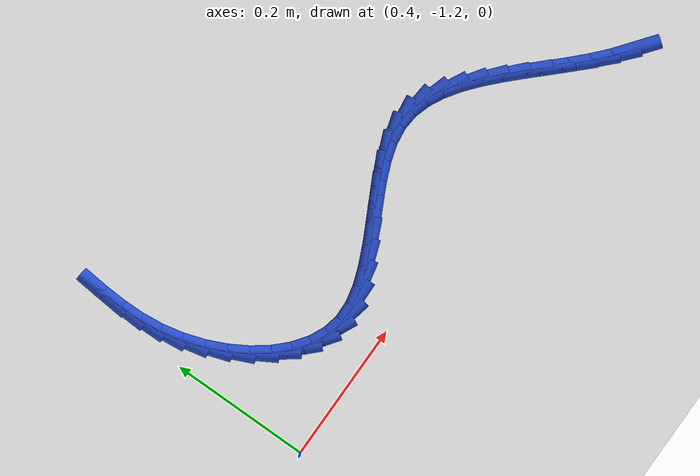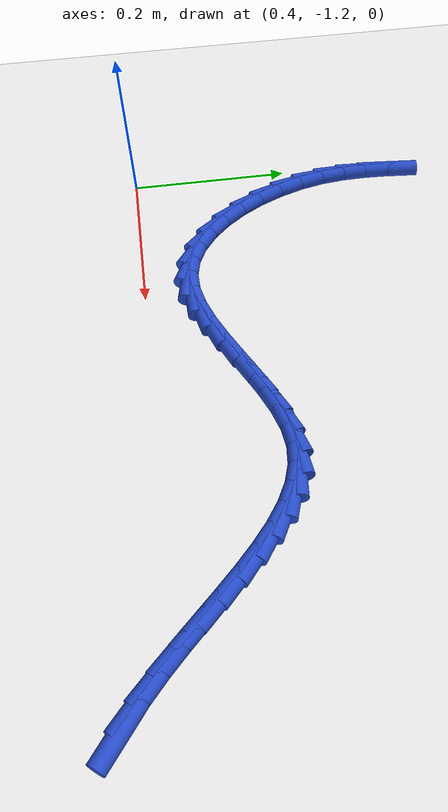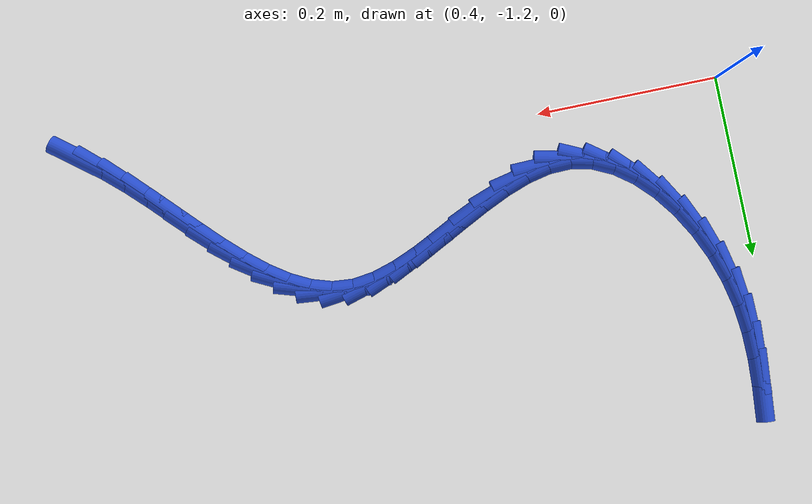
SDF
<sdf version="1.6">
 <world name="default">
  <model name="ground_plane">
   <static>1</static>
   <link name="link">
    <collision name="collision">
     <geometry><plane><normal>0 0 1</normal><size>100 100</size></plane></geometry>
     <surface><friction><ode><mu>100</mu><mu2>50</mu2></ode></friction></surface>
    </collision>
    <visual name="visual">
     <cast_shadows>0</cast_shadows>
     <geometry><plane><normal>0 0 1</normal><size>100 100</size></plane></geometry>
     <material>
      <script><uri>file://media/materials/scripts/gazebo.material</uri><name>Gazebo/WhiteGlow</name></script>
     </material>
    </visual>
   </link>
  </model>
  <model name="line">
   <link name="link_208">
    <pose>1.0993977422378118 -1.250217926909814 0.01 0 1.57 -0.6612338966241886</pose>
    <collision name="collision">
     <geometry><cylinder><radius>0.01</radius><length>0.08</length></cylinder></geometry>
    </collision>
    <visual name="visual">
     <material>
      <script><name>Gazebo/Blue</name><uri>file://media/materials/scripts/gazebo.material</uri></script>
     </material>
     <geometry><cylinder><radius>0.01</radius><length>0.08</length></cylinder></geometry>
    </visual>
   </link>
   <link name="link_209">
    <pose>1.076880094505572 -1.232697307079208 0.01 0 1.57 -0.7316763384853671</pose>
    <collision name="collision">
     <geometry><cylinder><radius>0.01</radius><length>0.08</length></cylinder></geometry>
    </collision>
    <visual name="visual">
     <material>
      <script><name>Gazebo/Blue</name><uri>file://media/materials/scripts/gazebo.material</uri></script>
     </material>
     <geometry><cylinder><radius>0.01</radius><length>0.08</length></cylinder></geometry>
    </visual>
   </link>
   <link name="link_210">
    <pose>1.0549374881377533 -1.2129941423194144 0.01 0 1.57 -0.7775174900619981</pose>
    <collision name="collision">
     <geometry><cylinder><radius>0.01</radius><length>0.08</length></cylinder></geometry>
    </collision>
    <visual name="visual">
     <material>
      <script><name>Gazebo/Blue</name><uri>file://media/materials/scripts/gazebo.material</uri></script>
     </material>
     <geometry><cylinder><radius>0.01</radius><length>0.08</length></cylinder></geometry>
    </visual>
   </link>
   <link name="link_211">
    <pose>1.0334311104796698 -1.1918240906227373 0.01 0 1.57 -0.8019121973333083</pose>
    <collision name="collision">
     <geometry><cylinder><radius>0.01</radius><length>0.08</length></cylinder></geometry>
    </collision>
    <visual name="visual">
     <material>
      <script><name>Gazebo/Blue</name><uri>file://media/materials/scripts/gazebo.material</uri></script>
     </material>
     <geometry><cylinder><radius>0.01</radius><length>0.08</length></cylinder></geometry>
    </visual>
   </link>
   <link name="link_212">
    <pose>1.0122221488766368 -1.1699028099814803 0.01 0 1.57 -0.8064727503888008</pose>
    <collision name="collision">
     <geometry><cylinder><radius>0.01</radius><length>0.08</length></cylinder></geometry>
    </collision>
    <visual name="visual">
     <material>
      <script><name>Gazebo/Blue</name><uri>file://media/materials/scripts/gazebo.material</uri></script>
     </material>
     <geometry><cylinder><radius>0.01</radius><length>0.08</length></cylinder></geometry>
    </visual>
   </link>
   <link name="link_213">
    <pose>0.9911717906739695 -1.1479459583879479 0.01 0 1.57 -0.7912173513685357</pose>
    <collision name="collision">
     <geometry><cylinder><radius>0.01</radius><length>0.08</length></cylinder></geometry>
    </collision>
    <visual name="visual">
     <material>
      <script><name>Gazebo/Blue</name><uri>file://media/materials/scripts/gazebo.material</uri></script>
     </material>
     <geometry><cylinder><radius>0.01</radius><length>0.08</length></cylinder></geometry>
    </visual>
   </link>
   <link name="link_214">
    <pose>0.970141223216982 -1.1266691938344433 0.01 0 1.57 -0.7544903630529287</pose>
    <collision name="collision">
     <geometry><cylinder><radius>0.01</radius><length>0.08</length></cylinder></geometry>
    </collision>
    <visual name="visual">
     <material>
      <script><name>Gazebo/Blue</name><uri>file://media/materials/scripts/gazebo.material</uri></script>
     </material>
     <geometry><cylinder><radius>0.01</radius><length>0.08</length></cylinder></geometry>
    </visual>
   </link>
   <link name="link_215">
    <pose>0.94899163385099 -1.1067881743132713 0.01 0 1.57 -0.6928080673538185</pose>
    <collision name="collision">
     <geometry><cylinder><radius>0.01</radius><length>0.08</length></cylinder></geometry>
    </collision>
    <visual name="visual">
     <material>
      <script><name>Gazebo/Blue</name><uri>file://media/materials/scripts/gazebo.material</uri></script>
     </material>
     <geometry><cylinder><radius>0.01</radius><length>0.08</length></cylinder></geometry>
    </visual>
   </link>
   <link name="link_216">
    <pose>0.9275842099213082 -1.0890185578167357 0.01 0 1.57 -0.6007989499855888</pose>
    <collision name="collision">
     <geometry><cylinder><radius>0.01</radius><length>0.08</length></cylinder></geometry>
    </collision>
    <visual name="visual">
     <material>
      <script><name>Gazebo/Blue</name><uri>file://media/materials/scripts/gazebo.material</uri></script>
     </material>
     <geometry><cylinder><radius>0.01</radius><length>0.08</length></cylinder></geometry>
    </visual>
   </link>
   <link name="link_217">
    <pose>0.9057801387732507 -1.0740760023371403 0.01 0 1.57 -0.4718526844508861</pose>
    <collision name="collision">
     <geometry><cylinder><radius>0.01</radius><length>0.08</length></cylinder></geometry>
    </collision>
    <visual name="visual">
     <material>
      <script><name>Gazebo/Blue</name><uri>file://media/materials/scripts/gazebo.material</uri></script>
     </material>
     <geometry><cylinder><radius>0.01</radius><length>0.08</length></cylinder></geometry>
    </visual>
   </link>
   <link name="link_218">
    <pose>0.883440607752134 -1.0626761658667896 0.01 0 1.57 -0.30089029293661657</pose>
    <collision name="collision">
     <geometry><cylinder><radius>0.01</radius><length>0.08</length></cylinder></geometry>
    </collision>
    <visual name="visual">
     <material>
      <script><name>Gazebo/Blue</name><uri>file://media/materials/scripts/gazebo.material</uri></script>
     </material>
     <geometry><cylinder><radius>0.01</radius><length>0.08</length></cylinder></geometry>
    </visual>
   </link>
   <link name="link_219">
    <pose>0.860426804203272 -1.0555347063979879 0.01 0 1.57 -0.09071853950685524</pose>
    <collision name="collision">
     <geometry><cylinder><radius>0.01</radius><length>0.08</length></cylinder></geometry>
    </collision>
    <visual name="visual">
     <material>
      <script><name>Gazebo/Blue</name><uri>file://media/materials/scripts/gazebo.material</uri></script>
     </material>
     <geometry><cylinder><radius>0.01</radius><length>0.08</length></cylinder></geometry>
    </visual>
   </link>
   <link name="link_220">
    <pose>0.8365999263009668 -1.0533672175302384 0.01 0 1.57 0.12672269864469585</pose>
    <collision name="collision">
     <geometry><cylinder><radius>0.01</radius><length>0.08</length></cylinder></geometry>
    </collision>
    <visual name="visual">
     <material>
      <script><name>Gazebo/Blue</name><uri>file://media/materials/scripts/gazebo.material</uri></script>
     </material>
     <geometry><cylinder><radius>0.01</radius><length>0.08</length></cylinder></geometry>
    </visual>
   </link>
   <link name="link_221">
    <pose>0.8118839204894288 -1.0565161705296373 0.01 0 1.57 0.2884017518942818</pose>
    <collision name="collision">
     <geometry><cylinder><radius>0.01</radius><length>0.08</length></cylinder></geometry>
    </collision>
    <visual name="visual">
     <material>
      <script><name>Gazebo/Blue</name><uri>file://media/materials/scripts/gazebo.material</uri></script>
     </material>
     <geometry><cylinder><radius>0.01</radius><length>0.08</length></cylinder></geometry>
    </visual>
   </link>
   <link name="link_222">
    <pose>0.7864131794031083 -1.064072652780727 0.01 0 1.57 0.3928309562452103</pose>
    <collision name="collision">
     <geometry><cylinder><radius>0.01</radius><length>0.08</length></cylinder></geometry>
    </collision>
    <visual name="visual">
     <material>
      <script><name>Gazebo/Blue</name><uri>file://media/materials/scripts/gazebo.material</uri></script>
     </material>
     <geometry><cylinder><radius>0.01</radius><length>0.08</length></cylinder></geometry>
    </visual>
   </link>
   <link name="link_223">
    <pose>0.7603661644090323 -1.0748657041509955 0.01 0 1.57 0.45258303452949156</pose>
    <collision name="collision">
     <geometry><cylinder><radius>0.01</radius><length>0.08</length></cylinder></geometry>
    </collision>
    <visual name="visual">
     <material>
      <script><name>Gazebo/Blue</name><uri>file://media/materials/scripts/gazebo.material</uri></script>
     </material>
     <geometry><cylinder><radius>0.01</radius><length>0.08</length></cylinder></geometry>
    </visual>
   </link>
   <link name="link_224">
    <pose>0.733921336874227 -1.0877243645079295 0.01 0 1.57 0.47620536840138344</pose>
    <collision name="collision">
     <geometry><cylinder><radius>0.01</radius><length>0.08</length></cylinder></geometry>
    </collision>
    <visual name="visual">
     <material>
      <script><name>Gazebo/Blue</name><uri>file://media/materials/scripts/gazebo.material</uri></script>
     </material>
     <geometry><cylinder><radius>0.01</radius><length>0.08</length></cylinder></geometry>
    </visual>
   </link>
   <link name="link_225">
    <pose>0.7072571581657192 -1.1014776737190166 0.01 0 1.57 0.46736919464171917</pose>
    <collision name="collision">
     <geometry><cylinder><radius>0.01</radius><length>0.08</length></cylinder></geometry>
    </collision>
    <visual name="visual">
     <material>
      <script><name>Gazebo/Blue</name><uri>file://media/materials/scripts/gazebo.material</uri></script>
     </material>
     <geometry><cylinder><radius>0.01</radius><length>0.08</length></cylinder></geometry>
    </visual>
   </link>
   <link name="link_226">
    <pose>0.6805520896505349 -1.114954671651745 0.01 0 1.57 0.4251788394068116</pose>
    <collision name="collision">
     <geometry><cylinder><radius>0.01</radius><length>0.08</length></cylinder></geometry>
    </collision>
    <visual name="visual">
     <material>
      <script><name>Gazebo/Blue</name><uri>file://media/materials/scripts/gazebo.material</uri></script>
     </material>
     <geometry><cylinder><radius>0.01</radius><length>0.08</length></cylinder></geometry>
    </visual>
   </link>
   <link name="link_227">
    <pose>0.6539845926957019 -1.1269843981736007 0.01 0 1.57 0.34423869216464537</pose>
    <collision name="collision">
     <geometry><cylinder><radius>0.01</radius><length>0.08</length></cylinder></geometry>
    </collision>
    <visual name="visual">
     <material>
      <script><name>Gazebo/Blue</name><uri>file://media/materials/scripts/gazebo.material</uri></script>
     </material>
     <geometry><cylinder><radius>0.01</radius><length>0.08</length></cylinder></geometry>
    </visual>
   </link>
   <link name="link_228">
    <pose>0.6277331286682462 -1.1363958931520721 0.01 0 1.57 0.21491178524806193</pose>
    <collision name="collision">
     <geometry><cylinder><radius>0.01</radius><length>0.08</length></cylinder></geometry>
    </collision>
    <visual name="visual">
     <material>
      <script><name>Gazebo/Blue</name><uri>file://media/materials/scripts/gazebo.material</uri></script>
     </material>
     <geometry><cylinder><radius>0.01</radius><length>0.08</length></cylinder></geometry>
    </visual>
   </link>
   <link name="link_229">
    <pose>0.6019761589351945 -1.1420181964546463 0.01 0 1.57 0.026391220974162227</pose>
    <collision name="collision">
     <geometry><cylinder><radius>0.01</radius><length>0.08</length></cylinder></geometry>
    </collision>
    <visual name="visual">
     <material>
      <script><name>Gazebo/Blue</name><uri>file://media/materials/scripts/gazebo.material</uri></script>
     </material>
     <geometry><cylinder><radius>0.01</radius><length>0.08</length></cylinder></geometry>
    </visual>
   </link>
   <link name="link_230">
    <pose>0.5768921448635734 -1.1426803479488106 0.01 0 1.57 -0.21466782365287468</pose>
    <collision name="collision">
     <geometry><cylinder><radius>0.01</radius><length>0.08</length></cylinder></geometry>
    </collision>
    <visual name="visual">
     <material>
      <script><name>Gazebo/Blue</name><uri>file://media/materials/scripts/gazebo.material</uri></script>
     </material>
     <geometry><cylinder><radius>0.01</radius><length>0.08</length></cylinder></geometry>
    </visual>
   </link>
   <link name="link_231">
    <pose>0.5526718037794105 -1.1373996542840525 0.01 0 1.57 -0.4441198325205834</pose>
    <collision name="collision">
     <geometry><cylinder><radius>0.01</radius><length>0.08</length></cylinder></geometry>
    </collision>
    <visual name="visual">
     <material>
      <script><name>Gazebo/Blue</name><uri>file://media/materials/scripts/gazebo.material</uri></script>
     </material>
     <geometry><cylinder><radius>0.01</radius><length>0.08</length></cylinder></geometry>
    </visual>
   </link>
   <link name="link_232">
    <pose>0.5295853491697995 -1.1264145820716278 0.01 0 1.57 -0.6353478104322348</pose>
    <collision name="collision">
     <geometry><cylinder><radius>0.01</radius><length>0.08</length></cylinder></geometry>
    </collision>
    <visual name="visual">
     <material>
      <script><name>Gazebo/Blue</name><uri>file://media/materials/scripts/gazebo.material</uri></script>
     </material>
     <geometry><cylinder><radius>0.01</radius><length>0.08</length></cylinder></geometry>
    </visual>
   </link>
   <link name="link_233">
    <pose>0.507934707549298 -1.1104507494894333 0.01 0 1.57 -0.7929459662953121</pose>
    <collision name="collision">
     <geometry><cylinder><radius>0.01</radius><length>0.08</length></cylinder></geometry>
    </collision>
    <visual name="visual">
     <material>
      <script><name>Gazebo/Blue</name><uri>file://media/materials/scripts/gazebo.material</uri></script>
     </material>
     <geometry><cylinder><radius>0.01</radius><length>0.08</length></cylinder></geometry>
    </visual>
   </link>
   <link name="link_234">
    <pose>0.488021887924718 -1.0902350418990567 0.01 0 1.57 -0.9254789621627395</pose>
    <collision name="collision">
     <geometry><cylinder><radius>0.01</radius><length>0.08</length></cylinder></geometry>
    </collision>
    <visual name="visual">
     <material>
      <script><name>Gazebo/Blue</name><uri>file://media/materials/scripts/gazebo.material</uri></script>
     </material>
     <geometry><cylinder><radius>0.01</radius><length>0.08</length></cylinder></geometry>
    </visual>
   </link>
   <link name="link_235">
    <pose>0.47014889930287274 -1.0664943446620863 0.01 0 1.57 -1.0413122451046193</pose>
    <collision name="collision">
     <geometry><cylinder><radius>0.01</radius><length>0.08</length></cylinder></geometry>
    </collision>
    <visual name="visual">
     <material>
      <script><name>Gazebo/Blue</name><uri>file://media/materials/scripts/gazebo.material</uri></script>
     </material>
     <geometry><cylinder><radius>0.01</radius><length>0.08</length></cylinder></geometry>
    </visual>
   </link>
   <link name="link_236">
    <pose>0.45461775069057425 -1.0399555431401097 0.01 0 1.57 -1.1475706874051885</pose>
    <collision name="collision">
     <geometry><cylinder><radius>0.01</radius><length>0.08</length></cylinder></geometry>
    </collision>
    <visual name="visual">
     <material>
      <script><name>Gazebo/Blue</name><uri>file://media/materials/scripts/gazebo.material</uri></script>
     </material>
     <geometry><cylinder><radius>0.01</radius><length>0.08</length></cylinder></geometry>
    </visual>
   </link>
   <link name="link_237">
    <pose>0.4417304510946347 -1.0113455226947146 0.01 0 1.57 -1.2503486115554954</pose>
    <collision name="collision">
     <geometry><cylinder><radius>0.01</radius><length>0.08</length></cylinder></geometry>
    </collision>
    <visual name="visual">
     <material>
      <script><name>Gazebo/Blue</name><uri>file://media/materials/scripts/gazebo.material</uri></script>
     </material>
     <geometry><cylinder><radius>0.01</radius><length>0.08</length></cylinder></geometry>
    </visual>
   </link>
   <link name="link_238">
    <pose>0.4317890095218668 -0.9813911686874888 0.01 0 1.57 -1.3552515623642751</pose>
    <collision name="collision">
     <geometry><cylinder><radius>0.01</radius><length>0.08</length></cylinder></geometry>
    </collision>
    <visual name="visual">
     <material>
      <script><name>Gazebo/Blue</name><uri>file://media/materials/scripts/gazebo.material</uri></script>
     </material>
     <geometry><cylinder><radius>0.01</radius><length>0.08</length></cylinder></geometry>
    </visual>
   </link>
   <link name="link_239">
    <pose>0.42509543497908253 -0.9508193664800197 0.01 0 1.57 -1.4629520276080739</pose>
    <collision name="collision">
     <geometry><cylinder><radius>0.01</radius><length>0.08</length></cylinder></geometry>
    </collision>
    <visual name="visual">
     <material>
      <script><name>Gazebo/Blue</name><uri>file://media/materials/scripts/gazebo.material</uri></script>
     </material>
     <geometry><cylinder><radius>0.01</radius><length>0.08</length></cylinder></geometry>
    </visual>
   </link>
   <link name="link_240">
    <pose>0.42178872287669544 -0.920276419630724 0.01 0 1.57 -1.5534477710816585</pose>
    <collision name="collision">
     <geometry><cylinder><radius>0.01</radius><length>0.08</length></cylinder></geometry>
    </collision>
    <visual name="visual">
     <material>
      <script><name>Gazebo/Blue</name><uri>file://media/materials/scripts/gazebo.material</uri></script>
     </material>
     <geometry><cylinder><radius>0.01</radius><length>0.08</length></cylinder></geometry>
    </visual>
   </link>
   <link name="link_241">
    <pose>0.4212641290746784 -0.8900409821559627 0.01 0 1.57 1.5224108192117005</pose>
    <collision name="collision">
     <geometry><cylinder><radius>0.01</radius><length>0.08</length></cylinder></geometry>
    </collision>
    <visual name="visual">
     <material>
      <script><name>Gazebo/Blue</name><uri>file://media/materials/scripts/gazebo.material</uri></script>
     </material>
     <geometry><cylinder><radius>0.01</radius><length>0.08</length></cylinder></geometry>
    </visual>
   </link>
   <link name="link_242">
    <pose>0.4227049192221742 -0.86028691587181 0.01 0 1.57 1.482042916051154</pose>
    <collision name="collision">
     <geometry><cylinder><radius>0.01</radius><length>0.08</length></cylinder></geometry>
    </collision>
    <visual name="visual">
     <material>
      <script><name>Gazebo/Blue</name><uri>file://media/materials/scripts/gazebo.material</uri></script>
     </material>
     <geometry><cylinder><radius>0.01</radius><length>0.08</length></cylinder></geometry>
    </visual>
   </link>
  </model>
 </world>
</sdf>
